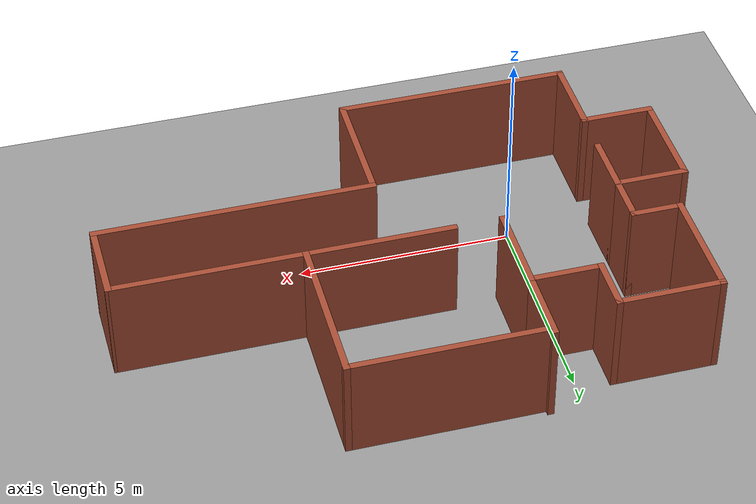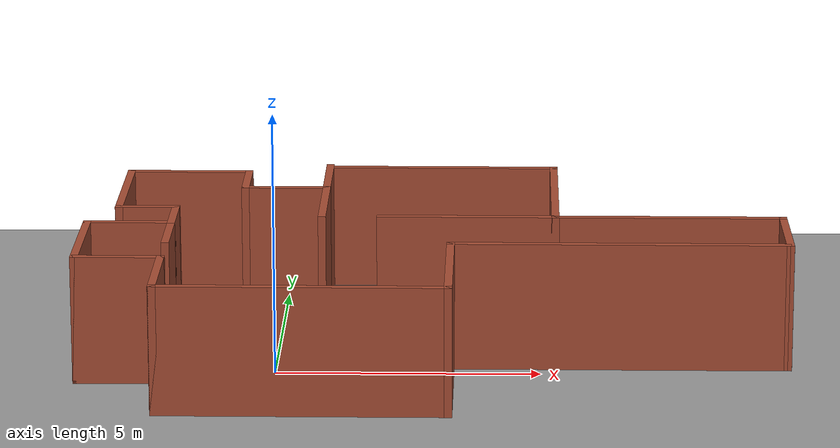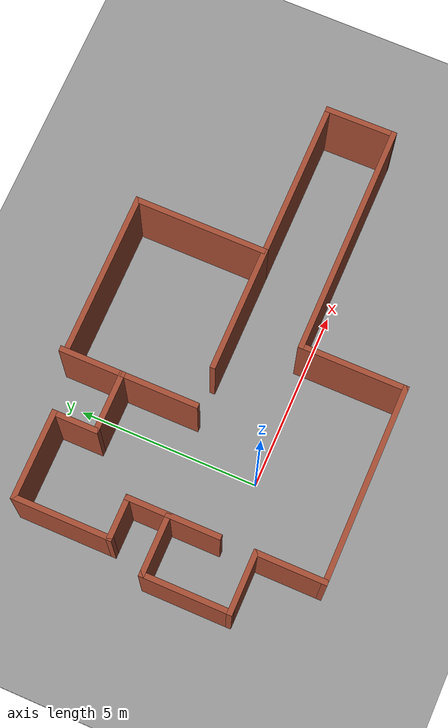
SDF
<sdf version="1.7">
 <world name="default">
  <light name="sun" type="directional">
   <pose>0 0 10 0 -0 0</pose>
   <diffuse>0.8 0.8 0.8 1</diffuse>
   <specular>0.2 0.2 0.2 1</specular>
   <attenuation>
    <range>1000</range>
    <constant>0.9</constant>
    <linear>0.01</linear>
    <quadratic>0.001</quadratic>
   </attenuation>
   <direction>-0.5 0.1 -0.9</direction>
   <spot><inner_angle>0</inner_angle><outer_angle>0</outer_angle><falloff>0</falloff></spot>
  </light>
  <model name="ground_plane">
   <static>1</static>
   <link name="link">
    <collision name="collision">
     <geometry><plane><normal>0 0 1</normal><size>100 100</size></plane></geometry>
     <surface>
      <contact><collide_bitmask>65535</collide_bitmask></contact>
      <friction><ode><mu>100</mu><mu2>50</mu2></ode></friction>
     </surface>
    </collision>
    <visual name="visual">
     <cast_shadows>0</cast_shadows>
     <geometry><plane><normal>0 0 1</normal><size>100 100</size></plane></geometry>
     <material>
      <script><uri>file://media/materials/scripts/gazebo.material</uri><name>Gazebo/Grey</name></script>
     </material>
    </visual>
   </link>
  </model>
  <gravity>0 0 -9.8</gravity>
  <magnetic_field>6e-06 2.3e-05 -4.2e-05</magnetic_field>
  <atmosphere type="adiabatic"/>
  <physics type="ode">
   <max_step_size>0.001</max_step_size>
   <real_time_factor>1</real_time_factor>
   <real_time_update_rate>1000</real_time_update_rate>
  </physics>
  <scene><ambient>0.4 0.4 0.4 1</ambient><background>0.7 0.7 0.7 1</background><shadows>1</shadows></scene>
  <spherical_coordinates>
   <surface_model>EARTH_WGS84</surface_model>
   <latitude_deg>0</latitude_deg>
   <longitude_deg>0</longitude_deg>
   <elevation>0</elevation>
   <heading_deg>0</heading_deg>
  </spherical_coordinates>
  <model name="main">
   <pose>2.99665 1.54276 0 0 -0 0</pose>
   <link name="Wall_10">
    <collision name="Wall_10_Collision">
     <geometry><box><size>1.75 0.15 2.5</size></box></geometry>
     <pose>0 0 1.25 0 -0 0</pose>
    </collision>
    <visual name="Wall_10_Visual">
     <pose>0 0 1.25 0 -0 0</pose>
     <geometry><box><size>1.75 0.15 2.5</size></box></geometry>
     <material>
      <script><uri>file://media/materials/scripts/gazebo.material</uri><name>Gazebo/Bricks</name></script>
      <ambient>1 1 1 1</ambient>
     </material>
     <meta><layer>0</layer></meta>
    </visual>
    <pose>-5.8504 -2.35001 0 0 -0 3.14159</pose>
   </link>
   <link name="Wall_11">
    <collision name="Wall_11_Collision">
     <geometry><box><size>2.5 0.15 2.5</size></box></geometry>
     <pose>0 0 1.25 0 -0 0</pose>
    </collision>
    <visual name="Wall_11_Visual">
     <pose>0 0 1.25 0 -0 0</pose>
     <geometry><box><size>2.5 0.15 2.5</size></box></geometry>
     <material>
      <script><uri>file://media/materials/scripts/gazebo.material</uri><name>Gazebo/Bricks</name></script>
      <ambient>1 1 1 1</ambient>
     </material>
     <meta><layer>0</layer></meta>
    </visual>
    <pose>-6.6504 -1.17501 0 0 -0 1.5708</pose>
   </link>
   <link name="Wall_12">
    <collision name="Wall_12_Collision">
     <geometry><box><size>1.75432 0.15 2.5</size></box></geometry>
     <pose>0 0 1.25 0 -0 0</pose>
    </collision>
    <visual name="Wall_12_Visual">
     <pose>0 0 1.25 0 -0 0</pose>
     <geometry><box><size>1.75432 0.15 2.5</size></box></geometry>
     <material>
      <script><uri>file://media/materials/scripts/gazebo.material</uri><name>Gazebo/Bricks</name></script>
      <ambient>1 1 1 1</ambient>
     </material>
     <meta><layer>0</layer></meta>
    </visual>
    <pose>-5.84824 -1.3e-05 0 0 -0 0</pose>
   </link>
   <link name="Wall_15">
    <collision name="Wall_15_Collision">
     <geometry><box><size>3 0.15 2.5</size></box></geometry>
     <pose>0 0 1.25 0 -0 0</pose>
    </collision>
    <visual name="Wall_15_Visual">
     <pose>0 0 1.25 0 -0 0</pose>
     <geometry><box><size>3 0.15 2.5</size></box></geometry>
     <material>
      <script><uri>file://media/materials/scripts/gazebo.material</uri><name>Gazebo/Bricks</name></script>
      <ambient>1 1 1 1</ambient>
     </material>
     <meta><layer>0</layer></meta>
    </visual>
    <pose>0.299597 -2.77501 0 0 -0 1.5708</pose>
   </link>
   <link name="Wall_16">
    <collision name="Wall_16_Collision">
     <geometry><box><size>6.5 0.15 2.5</size></box></geometry>
     <pose>0 0 1.25 0 -0 0</pose>
    </collision>
    <visual name="Wall_16_Visual">
     <pose>0 0 1.25 0 -0 0</pose>
     <geometry><box><size>6.5 0.15 2.5</size></box></geometry>
     <material>
      <script><uri>file://media/materials/scripts/gazebo.material</uri><name>Gazebo/Bricks</name></script>
      <ambient>1 1 1 1</ambient>
     </material>
     <meta><layer>0</layer></meta>
    </visual>
    <pose>3.4746 -1.35001 0 0 -0 0</pose>
   </link>
   <link name="Wall_17">
    <collision name="Wall_17_Collision">
     <geometry><box><size>2 0.15 2.5</size></box></geometry>
     <pose>0 0 1.25 0 -0 0</pose>
    </collision>
    <visual name="Wall_17_Visual">
     <pose>0 0 1.25 0 -0 0</pose>
     <geometry><box><size>2 0.15 2.5</size></box></geometry>
     <material>
      <script><uri>file://media/materials/scripts/gazebo.material</uri><name>Gazebo/Bricks</name></script>
      <ambient>1 1 1 1</ambient>
     </material>
     <meta><layer>0</layer></meta>
    </visual>
    <pose>6.6396 -0.425013 0 0 -0 1.58161</pose>
   </link>
   <link name="Wall_20">
    <collision name="Wall_20_Collision">
     <geometry><box><size>4.5 0.15 2.5</size></box></geometry>
     <pose>0 0 1.25 0 -0 0</pose>
    </collision>
    <visual name="Wall_20_Visual">
     <pose>0 0 1.25 0 -0 0</pose>
     <geometry><box><size>4.5 0.15 2.5</size></box></geometry>
     <material>
      <script><uri>file://media/materials/scripts/gazebo.material</uri><name>Gazebo/Bricks</name></script>
      <ambient>1 1 1 1</ambient>
     </material>
     <meta><layer>0</layer></meta>
    </visual>
    <pose>4.4546 0.499987 0 0 -0 3.14159</pose>
   </link>
   <link name="Wall_21">
    <collision name="Wall_21_Collision">
     <geometry><box><size>3.75 0.15 2.5</size></box></geometry>
     <pose>0 0 1.25 0 -0 0</pose>
    </collision>
    <visual name="Wall_21_Visual">
     <pose>0 0 1.25 0 -0 0</pose>
     <geometry><box><size>3.75 0.15 2.5</size></box></geometry>
     <material>
      <script><uri>file://media/materials/scripts/gazebo.material</uri><name>Gazebo/Bricks</name></script>
      <ambient>1 1 1 1</ambient>
     </material>
     <meta><layer>0</layer></meta>
    </visual>
    <pose>2.2796 2.29999 0 0 -0 1.5708</pose>
   </link>
   <link name="Wall_22">
    <collision name="Wall_22_Collision">
     <geometry><box><size>4.5 0.15 2.5</size></box></geometry>
     <pose>0 0 1.25 0 -0 0</pose>
    </collision>
    <visual name="Wall_22_Visual">
     <pose>0 0 1.25 0 -0 0</pose>
     <geometry><box><size>4.5 0.15 2.5</size></box></geometry>
     <material>
      <script><uri>file://media/materials/scripts/gazebo.material</uri><name>Gazebo/Bricks</name></script>
      <ambient>1 1 1 1</ambient>
     </material>
     <meta><layer>0</layer></meta>
    </visual>
    <pose>0.104597 4.09999 0 0 -0 3.14159</pose>
   </link>
   <link name="Wall_46">
    <collision name="Wall_46_Collision">
     <geometry><box><size>1.5 0.15 2.5</size></box></geometry>
     <pose>0 0 1.25 0 -0 0</pose>
    </collision>
    <visual name="Wall_46_Visual">
     <pose>0 0 1.25 0 -0 0</pose>
     <geometry><box><size>1.5 0.15 2.5</size></box></geometry>
     <material>
      <script><uri>file://media/materials/scripts/gazebo.material</uri><name>Gazebo/Bricks</name></script>
      <ambient>1 1 1 1</ambient>
     </material>
     <meta><layer>0</layer></meta>
    </visual>
    <pose>-5.04608 -0.675013 0 0 -0 -1.5708</pose>
   </link>
   <link name="Wall_48">
    <collision name="Wall_48_Collision">
     <geometry><box><size>1.25 0.15 2.5</size></box></geometry>
     <pose>0 0 1.25 0 -0 0</pose>
    </collision>
    <visual name="Wall_48_Visual">
     <pose>0 0 1.25 0 -0 0</pose>
     <geometry><box><size>1.25 0.15 2.5</size></box></geometry>
     <material>
      <script><uri>file://media/materials/scripts/gazebo.material</uri><name>Gazebo/Bricks</name></script>
      <ambient>1 1 1 1</ambient>
     </material>
     <meta><layer>0</layer></meta>
    </visual>
    <pose>-5.04608 0.549987 0 0 -0 1.5708</pose>
   </link>
   <link name="Wall_49">
    <collision name="Wall_49_Collision">
     <geometry><box><size>1.25 0.15 2.5</size></box></geometry>
     <pose>0 0 1.25 0 -0 0</pose>
    </collision>
    <visual name="Wall_49_Visual">
     <pose>0 0 1.25 0 -0 0</pose>
     <geometry><box><size>1.25 0.15 2.5</size></box></geometry>
     <material>
      <script><uri>file://media/materials/scripts/gazebo.material</uri><name>Gazebo/Bricks</name></script>
      <ambient>1 1 1 1</ambient>
     </material>
     <meta><layer>0</layer></meta>
    </visual>
    <pose>-5.59608 1.09999 0 0 -0 3.14159</pose>
   </link>
   <link name="Wall_51">
    <collision name="Wall_51_Collision">
     <geometry><box><size>2.75 0.15 2.5</size></box></geometry>
     <pose>0 0 1.25 0 -0 0</pose>
    </collision>
    <visual name="Wall_51_Visual">
     <pose>0 0 1.25 0 -0 0</pose>
     <geometry><box><size>2.75 0.15 2.5</size></box></geometry>
     <material>
      <script><uri>file://media/materials/scripts/gazebo.material</uri><name>Gazebo/Bricks</name></script>
      <ambient>1 1 1 1</ambient>
     </material>
     <meta><layer>0</layer></meta>
    </visual>
    <pose>-6.14608 2.39999 0 0 -0 1.5708</pose>
   </link>
   <link name="Wall_52">
    <collision name="Wall_52_Collision">
     <geometry><box><size>2.5 0.15 2.5</size></box></geometry>
     <pose>0 0 1.25 0 -0 0</pose>
    </collision>
    <visual name="Wall_52_Visual">
     <pose>0 0 1.25 0 -0 0</pose>
     <geometry><box><size>2.5 0.15 2.5</size></box></geometry>
     <material>
      <script><uri>file://media/materials/scripts/gazebo.material</uri><name>Gazebo/Bricks</name></script>
      <ambient>1 1 1 1</ambient>
     </material>
     <meta><layer>0</layer></meta>
    </visual>
    <pose>-4.97108 3.69999 0 0 -0 0</pose>
   </link>
   <link name="Wall_54">
    <collision name="Wall_54_Collision">
     <geometry><box><size>1.31492 0.15 2.5</size></box></geometry>
     <pose>0 0 1.25 0 -0 0</pose>
    </collision>
    <visual name="Wall_54_Visual">
     <pose>0 0 1.25 0 -0 0</pose>
     <geometry><box><size>1.31492 0.15 2.5</size></box></geometry>
     <material>
      <script><uri>file://media/materials/scripts/gazebo.material</uri><name>Gazebo/Bricks</name></script>
      <ambient>1 1 1 1</ambient>
     </material>
     <meta><layer>0</layer></meta>
    </visual>
    <pose>-3.79608 3.11756 0 0 -0 -1.5708</pose>
   </link>
   <link name="Wall_58">
    <collision name="Wall_58_Collision">
     <geometry><box><size>1.75 0.15 2.5</size></box></geometry>
     <pose>0 0 1.25 0 -0 0</pose>
    </collision>
    <visual name="Wall_58_Visual">
     <pose>0 0 1.25 0 -0 0</pose>
     <geometry><box><size>1.75 0.15 2.5</size></box></geometry>
     <material>
      <script><uri>file://media/materials/scripts/gazebo.material</uri><name>Gazebo/Bricks</name></script>
      <ambient>1 1 1 1</ambient>
     </material>
     <meta><layer>0</layer></meta>
    </visual>
    <pose>-2.99608 2.53514 0 0 -0 0</pose>
   </link>
   <link name="Wall_59">
    <collision name="Wall_59_Collision">
     <geometry><box><size>1.8149 0.15 2.5</size></box></geometry>
     <pose>0 0 1.25 0 -0 0</pose>
    </collision>
    <visual name="Wall_59_Visual">
     <pose>0 0 1.25 0 -0 0</pose>
     <geometry><box><size>1.8149 0.15 2.5</size></box></geometry>
     <material>
      <script><uri>file://media/materials/scripts/gazebo.material</uri><name>Gazebo/Bricks</name></script>
      <ambient>1 1 1 1</ambient>
     </material>
     <meta><layer>0</layer></meta>
    </visual>
    <pose>-2.19608 3.36756 0 0 -0 1.5708</pose>
   </link>
   <link name="Wall_61">
    <collision name="Wall_61_Collision">
     <geometry><box><size>2.18519 0.15 2.5</size></box></geometry>
     <pose>0 0 1.25 0 -0 0</pose>
    </collision>
    <visual name="Wall_61_Visual">
     <pose>0 0 1.25 0 -0 0</pose>
     <geometry><box><size>2.18519 0.15 2.5</size></box></geometry>
     <material>
      <script><uri>file://media/materials/scripts/gazebo.material</uri><name>Gazebo/Bricks</name></script>
      <ambient>1 1 1 1</ambient>
     </material>
     <meta><layer>0</layer></meta>
    </visual>
    <pose>-2.19608 1.51756 0 0 -0 -1.5708</pose>
   </link>
   <link name="Wall_67">
    <collision name="Wall_67_Collision">
     <geometry><box><size>3.5 0.15 2.5</size></box></geometry>
     <pose>0 0 1.25 0 -0 0</pose>
    </collision>
    <visual name="Wall_67_Visual">
     <pose>0 0 1.25 0 -0 0</pose>
     <geometry><box><size>3.5 0.15 2.5</size></box></geometry>
     <material>
      <script><uri>file://media/materials/scripts/gazebo.material</uri><name>Gazebo/Bricks</name></script>
      <ambient>1 1 1 1</ambient>
     </material>
     <meta><layer>0</layer></meta>
    </visual>
    <pose>0.604597 0.499987 0 0 -0 3.14159</pose>
   </link>
   <link name="Wall_7">
    <collision name="Wall_7_Collision">
     <geometry><box><size>5.5 0.15 2.5</size></box></geometry>
     <pose>0 0 1.25 0 -0 0</pose>
    </collision>
    <visual name="Wall_7_Visual">
     <pose>0 0 1.25 0 -0 0</pose>
     <geometry><box><size>5.5 0.15 2.5</size></box></geometry>
     <material>
      <script><uri>file://media/materials/scripts/gazebo.material</uri><name>Gazebo/Bricks</name></script>
      <ambient>1 1 1 1</ambient>
     </material>
     <meta><layer>0</layer></meta>
    </visual>
    <pose>-2.3754 -4.20001 0 0 -0 0</pose>
   </link>
   <link name="Wall_9">
    <collision name="Wall_9_Collision">
     <geometry><box><size>2 0.15 2.5</size></box></geometry>
     <pose>0 0 1.25 0 -0 0</pose>
    </collision>
    <visual name="Wall_9_Visual">
     <pose>0 0 1.25 0 -0 0</pose>
     <geometry><box><size>2 0.15 2.5</size></box></geometry>
     <material>
      <script><uri>file://media/materials/scripts/gazebo.material</uri><name>Gazebo/Bricks</name></script>
      <ambient>1 1 1 1</ambient>
     </material>
     <meta><layer>0</layer></meta>
    </visual>
    <pose>-5.0504 -3.27501 0 0 -0 1.5708</pose>
   </link>
   <static>1</static>
  </model>
  <model name="ground_plane_0">
   <static>1</static>
   <link name="link">
    <collision name="collision">
     <geometry><plane><normal>0 0 1</normal><size>100 100</size></plane></geometry>
     <surface>
      <contact><collide_bitmask>65535</collide_bitmask></contact>
      <friction><ode><mu>100</mu><mu2>50</mu2></ode></friction>
     </surface>
    </collision>
    <visual name="visual">
     <cast_shadows>0</cast_shadows>
     <geometry><plane><normal>0 0 1</normal><size>100 100</size></plane></geometry>
     <material>
      <script><uri>file://media/materials/scripts/gazebo.material</uri><name>Gazebo/Grey</name></script>
     </material>
    </visual>
   </link>
   <pose>-0.97344 1.10315 0 0 -0 0</pose>
  </model>
 </world>
</sdf>
